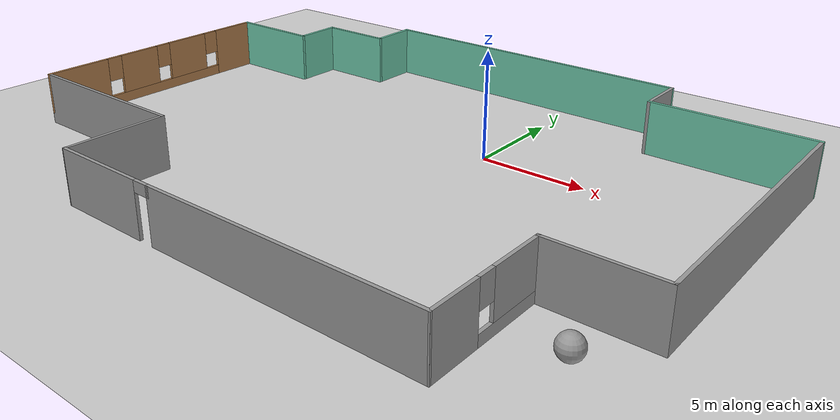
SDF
<sdf version="1.6">
 <world name="default">
  <plugin name="hello" filename="libhello.so"/>
  <light name="sun" type="directional">
   <pose>0 0 10 0 -0 0</pose>
   <diffuse>0.8 0.8 0.8 1</diffuse>
   <specular>0.2 0.2 0.2 1</specular>
   <attenuation>
    <range>1000</range>
    <constant>0.9</constant>
    <linear>0.01</linear>
    <quadratic>0.001</quadratic>
   </attenuation>
   <direction>-0.5 0.1 -0.9</direction>
  </light>
  <model name="ground_plane">
   <static>1</static>
   <link name="link">
    <collision name="collision">
     <geometry><plane><normal>0 0 1</normal><size>100 100</size></plane></geometry>
     <surface>
      <contact><collide_bitmask>65535</collide_bitmask></contact>
      <friction><ode><mu>100</mu><mu2>50</mu2></ode></friction>
     </surface>
    </collision>
    <visual name="visual">
     <cast_shadows>0</cast_shadows>
     <geometry><plane><normal>0 0 1</normal><size>100 100</size></plane></geometry>
     <material>
      <script><uri>file://media/materials/scripts/gazebo.material</uri><name>Gazebo/Grey</name></script>
     </material>
    </visual>
   </link>
  </model>
  <gravity>0 0 -9.8</gravity>
  <magnetic_field>6e-06 2.3e-05 -4.2e-05</magnetic_field>
  <atmosphere type="adiabatic"/>
  <physics name="default_physics" default="0" type="ode">
   <max_step_size>0.001</max_step_size>
   <real_time_factor>1</real_time_factor>
   <real_time_update_rate>1000</real_time_update_rate>
  </physics>
  <scene><ambient>0.4 0.4 0.4 1</ambient><background>0.7 0.7 0.7 1</background><shadows>1</shadows></scene>
  <spherical_coordinates>
   <surface_model>EARTH_WGS84</surface_model>
   <latitude_deg>0</latitude_deg>
   <longitude_deg>0</longitude_deg>
   <elevation>0</elevation>
   <heading_deg>0</heading_deg>
  </spherical_coordinates>
  <model name="MyBuilding">
   <pose>-2.62088 -3.4192 0 0 -0 0</pose>
   <link name="Wall_0">
    <collision name="Wall_0_Collision">
     <geometry><box><size>12.7504 0.15 2.5</size></box></geometry>
     <pose>0 0 1.25 0 -0 0</pose>
    </collision>
    <visual name="Wall_0_Visual">
     <pose>0 0 1.25 0 -0 0</pose>
     <geometry><box><size>12.7504 0.15 2.5</size></box></geometry>
     <material>
      <script><uri>file://media/materials/scripts/gazebo.material</uri><name>Gazebo/Grey</name></script>
      <ambient>1 1 1 1</ambient>
     </material>
     <meta><layer>0</layer></meta>
    </visual>
    <pose>4.29535 -10.8997 0 0 -0 0.007936</pose>
   </link>
   <link name="Wall_1">
    <pose>10.5953 -8.0497 0 0 -0 1.5708</pose>
    <visual name="Wall_1_Visual_0">
     <pose>-1.68425 0 1.25 0 -0 0</pose>
     <geometry><box><size>2.3815 0.15 2.5</size></box></geometry>
     <material>
      <script><uri>file://media/materials/scripts/gazebo.material</uri><name>Gazebo/Grey</name></script>
      <ambient>1 1 1 1</ambient>
     </material>
     <meta><layer>0</layer></meta>
    </visual>
    <collision name="Wall_1_Collision_0">
     <geometry><box><size>2.3815 0.15 2.5</size></box></geometry>
     <pose>-1.68425 0 1.25 0 -0 0</pose>
    </collision>
    <visual name="Wall_1_Visual_1">
     <pose>1.19075 0 0.25 0 -0 0</pose>
     <geometry><box><size>3.3685 0.15 0.5</size></box></geometry>
     <material>
      <script><uri>file://media/materials/scripts/gazebo.material</uri><name>Gazebo/Grey</name></script>
      <ambient>1 1 1 1</ambient>
     </material>
     <meta><layer>0</layer></meta>
    </visual>
    <collision name="Wall_1_Collision_1">
     <geometry><box><size>3.3685 0.15 0.5</size></box></geometry>
     <pose>1.19075 0 0.25 0 -0 0</pose>
    </collision>
    <visual name="Wall_1_Visual_2">
     <pose>1.59075 0 1.5 0 -0 0</pose>
     <geometry><box><size>2.5685 0.15 2</size></box></geometry>
     <material>
      <script><uri>file://media/materials/scripts/gazebo.material</uri><name>Gazebo/Grey</name></script>
      <ambient>1 1 1 1</ambient>
     </material>
     <meta><layer>0</layer></meta>
    </visual>
    <collision name="Wall_1_Collision_2">
     <geometry><box><size>2.5685 0.15 2</size></box></geometry>
     <pose>1.59075 0 1.5 0 -0 0</pose>
    </collision>
    <visual name="Wall_1_Visual_3">
     <pose>-0.093498 0 1.9 0 -0 0</pose>
     <geometry><box><size>0.8 0.15 1.2</size></box></geometry>
     <material>
      <script><uri>file://media/materials/scripts/gazebo.material</uri><name>Gazebo/Grey</name></script>
      <ambient>1 1 1 1</ambient>
     </material>
     <meta><layer>0</layer></meta>
    </visual>
    <collision name="Wall_1_Collision_3">
     <geometry><box><size>0.8 0.15 1.2</size></box></geometry>
     <pose>-0.093498 0 1.9 0 -0 0</pose>
    </collision>
   </link>
   <link name="Wall_10">
    <collision name="Wall_10_Collision">
     <geometry><box><size>4.75 0.15 2.5</size></box></geometry>
     <pose>0 0 1.25 0 -0 0</pose>
    </collision>
    <visual name="Wall_10_Visual">
     <pose>0 0 1.25 0 -0 0</pose>
     <geometry><box><size>4.75 0.15 2.5</size></box></geometry>
     <material>
      <script><uri>file://media/materials/scripts/gazebo.material</uri><name>Gazebo/Grey</name></script>
      <ambient>0.435294 0.796078 0.67451 1</ambient>
     </material>
     <meta><layer>0</layer></meta>
    </visual>
    <pose>-13.9047 6.2503 0 0 -0 3.14159</pose>
   </link>
   <link name="Wall_11">
    <pose>-16.2047 -0.049703 0 0 -0 -1.5708</pose>
    <visual name="Wall_11_Visual_0">
     <pose>-5.13562 0 1.25 0 -0 0</pose>
     <geometry><box><size>2.47877 0.15 2.5</size></box></geometry>
     <material>
      <script><uri>file://media/materials/scripts/gazebo.material</uri><name>Gazebo/Wood</name></script>
      <ambient>1 1 1 1</ambient>
     </material>
     <meta><layer>0</layer></meta>
    </visual>
    <collision name="Wall_11_Collision_0">
     <geometry><box><size>2.47877 0.15 2.5</size></box></geometry>
     <pose>-5.13562 0 1.25 0 -0 0</pose>
    </collision>
    <visual name="Wall_11_Visual_1">
     <pose>1.23938 0 0.25 0 -0 0</pose>
     <geometry><box><size>10.2712 0.15 0.5</size></box></geometry>
     <material>
      <script><uri>file://media/materials/scripts/gazebo.material</uri><name>Gazebo/Wood</name></script>
      <ambient>1 1 1 1</ambient>
     </material>
     <meta><layer>0</layer></meta>
    </visual>
    <collision name="Wall_11_Collision_1">
     <geometry><box><size>10.2712 0.15 0.5</size></box></geometry>
     <pose>1.23938 0 0.25 0 -0 0</pose>
    </collision>
    <visual name="Wall_11_Visual_2">
     <pose>-1.89651 0 1.5 0 -0 0</pose>
     <geometry><box><size>2.39945 0.15 2</size></box></geometry>
     <material>
      <script><uri>file://media/materials/scripts/gazebo.material</uri><name>Gazebo/Wood</name></script>
      <ambient>1 1 1 1</ambient>
     </material>
     <meta><layer>0</layer></meta>
    </visual>
    <collision name="Wall_11_Collision_2">
     <geometry><box><size>2.39945 0.15 2</size></box></geometry>
     <pose>-1.89651 0 1.5 0 -0 0</pose>
    </collision>
    <visual name="Wall_11_Visual_3">
     <pose>1.21065 0 1.5 0 -0 0</pose>
     <geometry><box><size>2.21487 0.15 2</size></box></geometry>
     <material>
      <script><uri>file://media/materials/scripts/gazebo.material</uri><name>Gazebo/Wood</name></script>
      <ambient>1 1 1 1</ambient>
     </material>
     <meta><layer>0</layer></meta>
    </visual>
    <collision name="Wall_11_Collision_3">
     <geometry><box><size>2.21487 0.15 2</size></box></geometry>
     <pose>1.21065 0 1.5 0 -0 0</pose>
    </collision>
    <visual name="Wall_11_Visual_4">
     <pose>4.74654 0 1.5 0 -0 0</pose>
     <geometry><box><size>3.25692 0.15 2</size></box></geometry>
     <material>
      <script><uri>file://media/materials/scripts/gazebo.material</uri><name>Gazebo/Wood</name></script>
      <ambient>1 1 1 1</ambient>
     </material>
     <meta><layer>0</layer></meta>
    </visual>
    <collision name="Wall_11_Collision_4">
     <geometry><box><size>3.25692 0.15 2</size></box></geometry>
     <pose>4.74654 0 1.5 0 -0 0</pose>
    </collision>
    <visual name="Wall_11_Visual_5">
     <pose>-3.49623 0 1.9 0 -0 0</pose>
     <geometry><box><size>0.8 0.15 1.2</size></box></geometry>
     <material>
      <script><uri>file://media/materials/scripts/gazebo.material</uri><name>Gazebo/Wood</name></script>
      <ambient>1 1 1 1</ambient>
     </material>
     <meta><layer>0</layer></meta>
    </visual>
    <collision name="Wall_11_Collision_5">
     <geometry><box><size>0.8 0.15 1.2</size></box></geometry>
     <pose>-3.49623 0 1.9 0 -0 0</pose>
    </collision>
    <visual name="Wall_11_Visual_6">
     <pose>-0.296785 0 1.9 0 -0 0</pose>
     <geometry><box><size>0.8 0.15 1.2</size></box></geometry>
     <material>
      <script><uri>file://media/materials/scripts/gazebo.material</uri><name>Gazebo/Wood</name></script>
      <ambient>1 1 1 1</ambient>
     </material>
     <meta><layer>0</layer></meta>
    </visual>
    <collision name="Wall_11_Collision_6">
     <geometry><box><size>0.8 0.15 1.2</size></box></geometry>
     <pose>-0.296785 0 1.9 0 -0 0</pose>
    </collision>
    <visual name="Wall_11_Visual_7">
     <pose>2.71808 0 1.9 0 -0 0</pose>
     <geometry><box><size>0.8 0.15 1.2</size></box></geometry>
     <material>
      <script><uri>file://media/materials/scripts/gazebo.material</uri><name>Gazebo/Wood</name></script>
      <ambient>1 1 1 1</ambient>
     </material>
     <meta><layer>0</layer></meta>
    </visual>
    <collision name="Wall_11_Collision_7">
     <geometry><box><size>0.8 0.15 1.2</size></box></geometry>
     <pose>2.71808 0 1.9 0 -0 0</pose>
    </collision>
   </link>
   <link name="Wall_12">
    <collision name="Wall_12_Collision">
     <geometry><box><size>9 0.15 2.5</size></box></geometry>
     <pose>0 0 1.25 0 -0 0</pose>
    </collision>
    <visual name="Wall_12_Visual">
     <pose>0 0 1.25 0 -0 0</pose>
     <geometry><box><size>9 0.15 2.5</size></box></geometry>
     <material>
      <script><uri>file://media/materials/scripts/gazebo.material</uri><name>Gazebo/Grey</name></script>
      <ambient>1 1 1 1</ambient>
     </material>
     <meta><layer>0</layer></meta>
    </visual>
    <pose>-11.7797 -6.3497 0 0 -0 0</pose>
   </link>
   <link name="Wall_13">
    <collision name="Wall_13_Collision">
     <geometry><box><size>4.75 0.15 2.5</size></box></geometry>
     <pose>0 0 1.25 0 -0 0</pose>
    </collision>
    <visual name="Wall_13_Visual">
     <pose>0 0 1.25 0 -0 0</pose>
     <geometry><box><size>4.75 0.15 2.5</size></box></geometry>
     <material>
      <script><uri>file://media/materials/scripts/gazebo.material</uri><name>Gazebo/Grey</name></script>
      <ambient>1 1 1 1</ambient>
     </material>
     <meta><layer>0</layer></meta>
    </visual>
    <pose>-7.35465 -8.6497 0 0 -0 -1.5708</pose>
   </link>
   <link name="Wall_14">
    <pose>-4.67965 -10.9497 0 0 -0 0</pose>
    <visual name="Wall_14_Visual_0">
     <pose>-0.434916 0 1.25 0 -0 0</pose>
     <geometry><box><size>4.63017 0.15 2.5</size></box></geometry>
     <material>
      <script><uri>file://media/materials/scripts/gazebo.material</uri><name>Gazebo/Grey</name></script>
      <ambient>1 1 1 1</ambient>
     </material>
     <meta><layer>0</layer></meta>
    </visual>
    <collision name="Wall_14_Collision_0">
     <geometry><box><size>4.63017 0.15 2.5</size></box></geometry>
     <pose>-0.434916 0 1.25 0 -0 0</pose>
    </collision>
    <visual name="Wall_14_Visual_1">
     <pose>2.31508 0 2.25 0 -0 0</pose>
     <geometry><box><size>0.869832 0.15 0.5</size></box></geometry>
     <material>
      <script><uri>file://media/materials/scripts/gazebo.material</uri><name>Gazebo/Grey</name></script>
      <ambient>1 1 1 1</ambient>
     </material>
     <meta><layer>0</layer></meta>
    </visual>
    <collision name="Wall_14_Collision_1">
     <geometry><box><size>0.869832 0.15 0.5</size></box></geometry>
     <pose>2.31508 0 2.25 0 -0 0</pose>
    </collision>
   </link>
   <link name="Wall_2">
    <collision name="Wall_2_Collision">
     <geometry><box><size>4.75 0.15 2.5</size></box></geometry>
     <pose>0 0 1.25 0 -0 0</pose>
    </collision>
    <visual name="Wall_2_Visual">
     <pose>0 0 1.25 0 -0 0</pose>
     <geometry><box><size>4.75 0.15 2.5</size></box></geometry>
     <material>
      <script><uri>file://media/materials/scripts/gazebo.material</uri><name>Gazebo/Grey</name></script>
      <ambient>1 1 1 1</ambient>
     </material>
     <meta><layer>0</layer></meta>
    </visual>
    <pose>12.8953 -5.2497 0 0 -0 0</pose>
   </link>
   <link name="Wall_3">
    <collision name="Wall_3_Collision">
     <geometry><box><size>14 0.15 2.5</size></box></geometry>
     <pose>0 0 1.25 0 -0 0</pose>
    </collision>
    <visual name="Wall_3_Visual">
     <pose>0 0 1.25 0 -0 0</pose>
     <geometry><box><size>14 0.15 2.5</size></box></geometry>
     <material>
      <script><uri>file://media/materials/scripts/gazebo.material</uri><name>Gazebo/Grey</name></script>
      <ambient>1 1 1 1</ambient>
     </material>
     <meta><layer>0</layer></meta>
    </visual>
    <pose>15.1953 1.6753 0 0 -0 1.5708</pose>
   </link>
   <link name="Wall_4">
    <collision name="Wall_4_Collision">
     <geometry><box><size>7.5 0.15 2.5</size></box></geometry>
     <pose>0 0 1.25 0 -0 0</pose>
    </collision>
    <visual name="Wall_4_Visual">
     <pose>0 0 1.25 0 -0 0</pose>
     <geometry><box><size>7.5 0.15 2.5</size></box></geometry>
     <material>
      <script><uri>file://media/materials/scripts/gazebo.material</uri><name>Gazebo/Grey</name></script>
      <ambient>0.435294 0.796078 0.67451 1</ambient>
     </material>
     <meta><layer>0</layer></meta>
    </visual>
    <pose>11.5203 8.6003 0 0 -0 3.14159</pose>
   </link>
   <link name="Wall_5">
    <collision name="Wall_5_Collision">
     <geometry><box><size>2.5 0.15 2.5</size></box></geometry>
     <pose>0 0 1.25 0 -0 0</pose>
    </collision>
    <visual name="Wall_5_Visual">
     <pose>0 0 1.25 0 -0 0</pose>
     <geometry><box><size>2.5 0.15 2.5</size></box></geometry>
     <material>
      <script><uri>file://media/materials/scripts/gazebo.material</uri><name>Gazebo/Grey</name></script>
      <ambient>1 1 1 1</ambient>
     </material>
     <meta><layer>0</layer></meta>
    </visual>
    <pose>7.84535 9.7753 0 0 -0 1.5708</pose>
   </link>
   <link name="Wall_6">
    <collision name="Wall_6_Collision">
     <geometry><box><size>16 0.15 2.5</size></box></geometry>
     <pose>0 0 1.25 0 -0 0</pose>
    </collision>
    <visual name="Wall_6_Visual">
     <pose>0 0 1.25 0 -0 0</pose>
     <geometry><box><size>16 0.15 2.5</size></box></geometry>
     <material>
      <script><uri>file://media/materials/scripts/gazebo.material</uri><name>Gazebo/Grey</name></script>
      <ambient>0.435294 0.796078 0.67451 1</ambient>
     </material>
     <meta><layer>0</layer></meta>
    </visual>
    <pose>-0.079653 10.9503 0 0 -0 3.14159</pose>
   </link>
   <link name="Wall_7">
    <collision name="Wall_7_Collision">
     <geometry><box><size>2.5 0.15 2.5</size></box></geometry>
     <pose>0 0 1.25 0 -0 0</pose>
    </collision>
    <visual name="Wall_7_Visual">
     <pose>0 0 1.25 0 -0 0</pose>
     <geometry><box><size>2.5 0.15 2.5</size></box></geometry>
     <material>
      <script><uri>file://media/materials/scripts/gazebo.material</uri><name>Gazebo/Grey</name></script>
      <ambient>0.435294 0.796078 0.67451 1</ambient>
     </material>
     <meta><layer>0</layer></meta>
    </visual>
    <pose>-8.00465 9.7753 0 0 -0 -1.5708</pose>
   </link>
   <link name="Wall_8">
    <collision name="Wall_8_Collision">
     <geometry><box><size>3.75 0.15 2.5</size></box></geometry>
     <pose>0 0 1.25 0 -0 0</pose>
    </collision>
    <visual name="Wall_8_Visual">
     <pose>0 0 1.25 0 -0 0</pose>
     <geometry><box><size>3.75 0.15 2.5</size></box></geometry>
     <material>
      <script><uri>file://media/materials/scripts/gazebo.material</uri><name>Gazebo/Grey</name></script>
      <ambient>0.435294 0.796078 0.67451 1</ambient>
     </material>
     <meta><layer>0</layer></meta>
    </visual>
    <pose>-9.80465 8.6003 0 0 -0 3.14159</pose>
   </link>
   <link name="Wall_9">
    <collision name="Wall_9_Collision">
     <geometry><box><size>2.5 0.15 2.5</size></box></geometry>
     <pose>0 0 1.25 0 -0 0</pose>
    </collision>
    <visual name="Wall_9_Visual">
     <pose>0 0 1.25 0 -0 0</pose>
     <geometry><box><size>2.5 0.15 2.5</size></box></geometry>
     <material>
      <script><uri>file://media/materials/scripts/gazebo.material</uri><name>Gazebo/Grey</name></script>
      <ambient>0.435294 0.796078 0.67451 1</ambient>
     </material>
     <meta><layer>0</layer></meta>
    </visual>
    <pose>-11.6047 7.4253 0 0 -0 -1.5708</pose>
   </link>
   <static>1</static>
  </model>
  <model name="white_ball">
   <link name="link">
    <inertial>
     <mass>1</mass>
     <inertia><ixx>0.1</ixx><ixy>0</ixy><ixz>0</ixz><iyy>0.1</iyy><iyz>0</iyz><izz>0.1</izz></inertia>
    </inertial>
    <visual name="visual">
     <geometry><sphere><radius>0.5</radius></sphere></geometry>
     <material>
      <script><name>Gazebo/Grey</name><uri>file://media/materials/scripts/gazebo.material</uri></script>
      <shader type="pixel"><normal_map>__default__</normal_map></shader>
      <ambient>1 1 1 1</ambient>
      <diffuse>1 1 1 1</diffuse>
      <specular>1 1 1 1</specular>
      <emissive>1 1 1 1</emissive>
     </material>
    </visual>
    <collision name="collision">
     <geometry><sphere><radius>0.5</radius></sphere></geometry>
     <surface>
      <friction>
       <ode><mu>1</mu><mu2>1</mu2><fdir1>0 0 0</fdir1><slip1>0</slip1><slip2>0</slip2></ode>
       <torsional>
        <coefficient>1</coefficient>
        <patch_radius>0</patch_radius>
        <surface_radius>0</surface_radius>
        <use_patch_radius>1</use_patch_radius>
        <ode><slip>0</slip></ode>
       </torsional>
      </friction>
      <bounce><restitution_coefficient>0</restitution_coefficient><threshold>1e+06</threshold></bounce>
      <contact>
       <collide_without_contact>0</collide_without_contact>
       <collide_without_contact_bitmask>1</collide_without_contact_bitmask>
       <collide_bitmask>1</collide_bitmask>
       <ode>
        <soft_cfm>0</soft_cfm>
        <soft_erp>0.2</soft_erp>
        <kp>1e+13</kp>
        <kd>1</kd>
        <max_vel>0.01</max_vel>
        <min_depth>0</min_depth>
       </ode>
       <bullet>
        <split_impulse>1</split_impulse>
        <split_impulse_penetration_threshold>-0.01</split_impulse_penetration_threshold>
        <soft_cfm>0</soft_cfm>
        <soft_erp>0.2</soft_erp>
        <kp>1e+13</kp>
        <kd>1</kd>
       </bullet>
      </contact>
     </surface>
    </collision>
   </link>
   <static>0</static>
   <pose>10.4678 -10.7092 0.5 0 -0 0</pose>
  </model>
 </world>
</sdf>
